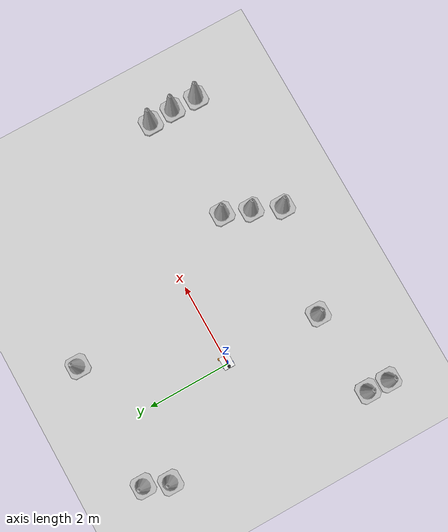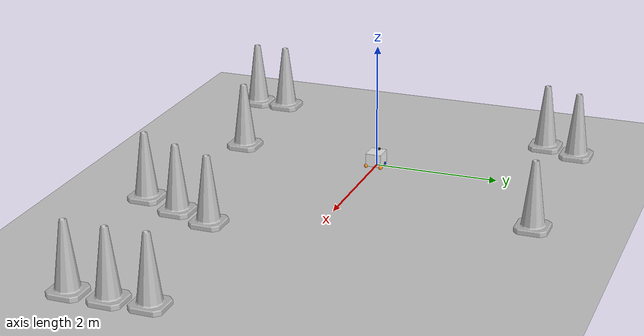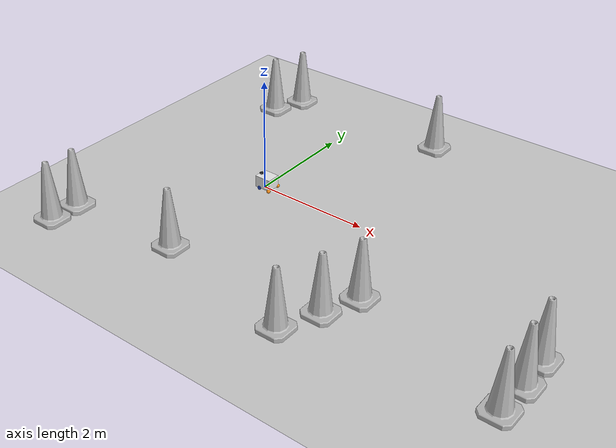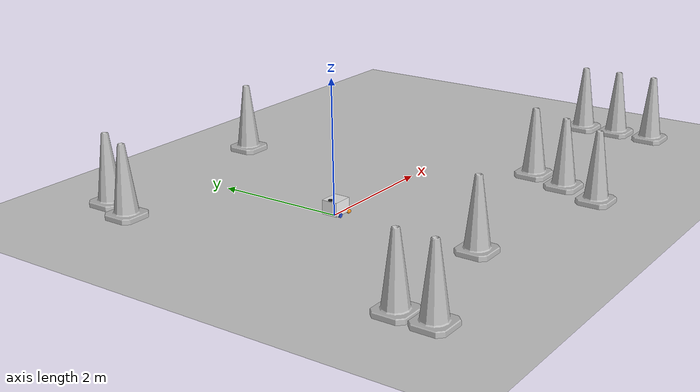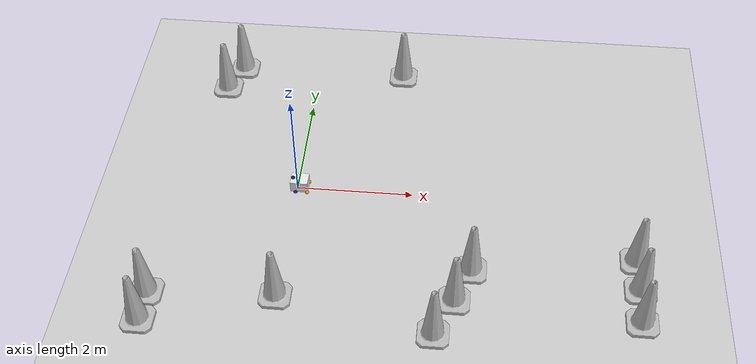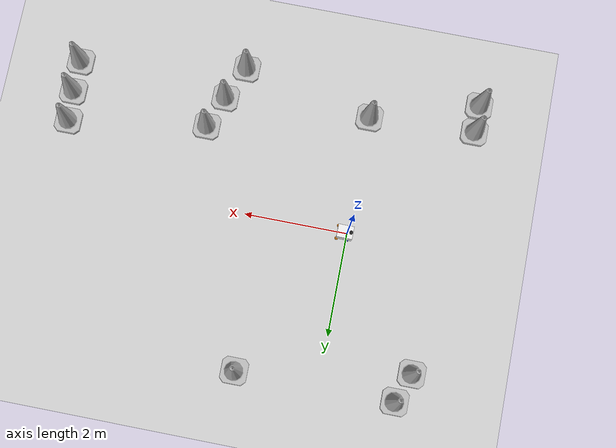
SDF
<sdf version="1.7">
 <world name="default">
  <light name="sun" type="directional">
   <pose>0 0 10 0 -0 0</pose>
   <diffuse>0.8 0.8 0.8 1</diffuse>
   <specular>0.2 0.2 0.2 1</specular>
   <attenuation>
    <range>1000</range>
    <constant>0.9</constant>
    <linear>0.01</linear>
    <quadratic>0.001</quadratic>
   </attenuation>
   <direction>-0.5 0.1 -0.9</direction>
   <spot><inner_angle>0</inner_angle><outer_angle>0</outer_angle><falloff>0</falloff></spot>
  </light>
  <model name="ground_plane">
   <static>1</static>
   <link name="link">
    <collision name="collision">
     <geometry><plane><normal>0 0 1</normal><size>100 100</size></plane></geometry>
     <surface>
      <contact><collide_bitmask>65535</collide_bitmask></contact>
      <friction><ode><mu>100</mu><mu2>50</mu2></ode></friction>
     </surface>
    </collision>
    <visual name="visual">
     <cast_shadows>0</cast_shadows>
     <geometry><plane><normal>0 0 1</normal><size>100 100</size></plane></geometry>
     <material>
      <script><uri>file://media/materials/scripts/gazebo.material</uri><name>Gazebo/Grey</name></script>
     </material>
    </visual>
   </link>
  </model>
  <gravity>0 0 -9.8</gravity>
  <magnetic_field>6e-06 2.3e-05 -4.2e-05</magnetic_field>
  <atmosphere type="adiabatic"/>
  <physics type="ode">
   <max_step_size>0.001</max_step_size>
   <real_time_factor>1</real_time_factor>
   <real_time_update_rate>1000</real_time_update_rate>
  </physics>
  <scene><ambient>0.4 0.4 0.4 1</ambient><background>0.7 0.7 0.7 1</background><shadows>1</shadows></scene>
  <audio><device>default</device></audio>
  <spherical_coordinates>
   <surface_model>EARTH_WGS84</surface_model>
   <latitude_deg>0</latitude_deg>
   <longitude_deg>0</longitude_deg>
   <elevation>0</elevation>
   <heading_deg>0</heading_deg>
  </spherical_coordinates>
  <model name="my_bot">
   <link name="base_link">
    <inertial>
     <pose>0.072808 0 0.075308 0 -0 0</pose>
     <mass>1.3</mass>
     <inertia>
      <ixx>0.0131992</ixx>
      <ixy>0</ixy>
      <ixz>0.00362602</ixz>
      <iyy>0.0174601</iyy>
      <iyz>0</iyz>
      <izz>0.0209439</izz>
     </inertia>
    </inertial>
    <collision name="base_link_fixed_joint_lump__chassis_collision">
     <pose>0.06 0 0.1045 0 -0 0</pose>
     <geometry><box><size>0.3 0.25 0.209</size></box></geometry>
    </collision>
    <collision name="base_link_fixed_joint_lump__laser_frame_collision_1">
     <pose>-0.0535 0 0.209 0 -0 0</pose>
     <geometry><cylinder><length>0.04</length><radius>0.05</radius></cylinder></geometry>
    </collision>
    <collision name="base_link_fixed_joint_lump__left_caster_wheel_collision_2">
     <pose>0.2 0.123 0 0 -0 0</pose>
     <geometry><sphere><radius>0.0335</radius></sphere></geometry>
     <surface><friction><ode><mu>0.001</mu><mu2>0.001</mu2></ode></friction></surface>
    </collision>
    <collision name="base_link_fixed_joint_lump__right_caster_wheel_collision_3">
     <pose>0.2 -0.123 0 0 -0 0</pose>
     <geometry><sphere><radius>0.0335</radius></sphere></geometry>
     <surface><friction><ode><mu>0.001</mu><mu2>0.001</mu2></ode></friction></surface>
    </collision>
    <visual name="base_link_fixed_joint_lump__chassis_visual">
     <pose>0.06 0 0.1045 0 -0 0</pose>
     <geometry><box><size>0.3 0.25 0.209</size></box></geometry>
     <material>
      <script><name>Gazebo/White</name><uri>file://media/materials/scripts/gazebo.material</uri></script>
     </material>
    </visual>
    <visual name="base_link_fixed_joint_lump__laser_frame_visual_1">
     <pose>-0.0535 0 0.209 0 -0 0</pose>
     <geometry><cylinder><length>0.026</length><radius>0.036</radius></cylinder></geometry>
     <material>
      <script><name>Gazebo/Black</name><uri>file://media/materials/scripts/gazebo.material</uri></script>
     </material>
    </visual>
    <visual name="base_link_fixed_joint_lump__laser_frame_visual_2">
     <pose>-0.0535 0 0.159 0 -0 0</pose>
     <geometry><cylinder><length>0.1</length><radius>0.01</radius></cylinder></geometry>
     <material>
      <script><name>Gazebo/Black</name><uri>file://media/materials/scripts/gazebo.material</uri></script>
     </material>
    </visual>
    <visual name="base_link_fixed_joint_lump__left_caster_wheel_visual_3">
     <pose>0.2 0.123 0 0 -0 0</pose>
     <geometry><sphere><radius>0.0335</radius></sphere></geometry>
     <material>
      <script><name>Gazebo/Orange</name><uri>file://media/materials/scripts/gazebo.material</uri></script>
     </material>
    </visual>
    <visual name="base_link_fixed_joint_lump__right_caster_wheel_visual_4">
     <pose>0.2 -0.123 0 0 -0 0</pose>
     <geometry><sphere><radius>0.0335</radius></sphere></geometry>
     <material>
      <script><name>Gazebo/Orange</name><uri>file://media/materials/scripts/gazebo.material</uri></script>
     </material>
    </visual>
    <sensor name="laser" type="ray">
     <visualize>0</visualize>
     <update_rate>10</update_rate>
     <ray>
      <scan>
       <horizontal>
        <samples>360</samples>
        <min_angle>-3.14</min_angle>
        <max_angle>3.14</max_angle>
        <resolution>1</resolution>
       </horizontal>
       <vertical><samples>1</samples><min_angle>0</min_angle><max_angle>0</max_angle></vertical>
      </scan>
      <range><min>0.3</min><max>12</max></range>
     </ray>
     <plugin name="laser_controller" filename="libgazebo_ros_ray_sensor.so">
      <ros><argument>~/out:=scan</argument></ros>
      <output_type>sensor_msgs/LaserScan</output_type>
      <frame_name>laser_frame</frame_name>
     </plugin>
     <pose>-0.0535 0 0.209 0 -0 0</pose>
    </sensor>
   </link>
   <joint name="left_wheel_joint" type="revolute">
    <pose relative_to="base_link">0 0.125 0 1.5708 -0 0</pose>
    <parent>base_link</parent>
    <child>left_wheel</child>
    <axis>
     <xyz>0 0 -1</xyz>
     <limit><lower>-1e+16</lower><upper>1e+16</upper></limit>
     <dynamics><spring_reference>0</spring_reference><spring_stiffness>0</spring_stiffness></dynamics>
    </axis>
   </joint>
   <link name="left_wheel">
    <pose relative_to="left_wheel_joint">0 0 0 0 -0 0</pose>
    <inertial>
     <mass>0.1</mass>
     <inertia>
      <ixx>3.36896e-05</ixx>
      <ixy>0</ixy>
      <ixz>0</ixz>
      <iyy>3.36896e-05</iyy>
      <iyz>0</iyz>
      <izz>5.61125e-05</izz>
     </inertia>
    </inertial>
    <collision name="left_wheel_collision">
     <geometry><cylinder><length>0.026</length><radius>0.0335</radius></cylinder></geometry>
    </collision>
    <visual name="left_wheel_visual">
     <geometry><cylinder><length>0.026</length><radius>0.0335</radius></cylinder></geometry>
     <material>
      <script><name>Gazebo/Blue</name><uri>file://media/materials/scripts/gazebo.material</uri></script>
     </material>
    </visual>
   </link>
   <joint name="right_wheel_joint" type="revolute">
    <pose relative_to="base_link">0 -0.125 0 -1.5708 0 0</pose>
    <parent>base_link</parent>
    <child>right_wheel</child>
    <axis>
     <xyz>0 0 1</xyz>
     <limit><lower>-1e+16</lower><upper>1e+16</upper></limit>
     <dynamics><spring_reference>0</spring_reference><spring_stiffness>0</spring_stiffness></dynamics>
    </axis>
   </joint>
   <link name="right_wheel">
    <pose relative_to="right_wheel_joint">0 0 0 0 -0 0</pose>
    <inertial>
     <mass>0.1</mass>
     <inertia>
      <ixx>3.36896e-05</ixx>
      <ixy>0</ixy>
      <ixz>0</ixz>
      <iyy>3.36896e-05</iyy>
      <iyz>0</iyz>
      <izz>5.61125e-05</izz>
     </inertia>
    </inertial>
    <collision name="right_wheel_collision">
     <geometry><cylinder><length>0.026</length><radius>0.0335</radius></cylinder></geometry>
    </collision>
    <visual name="right_wheel_visual">
     <geometry><cylinder><length>0.026</length><radius>0.0335</radius></cylinder></geometry>
     <material>
      <script><name>Gazebo/Blue</name><uri>file://media/materials/scripts/gazebo.material</uri></script>
     </material>
    </visual>
   </link>
   <static>0</static>
   <plugin name="diff_drive" filename="libgazebo_ros_diff_drive.so">
    <left_joint>left_wheel_joint</left_joint>
    <right_joint>right_wheel_joint</right_joint>
    <wheel_separation>0.23</wheel_separation>
    <wheel_diameter>0.067</wheel_diameter>
    <max_wheel_torque>5</max_wheel_torque>
    <max_wheel_acceleration>0.5</max_wheel_acceleration>
    <odometry_frame>odom</odometry_frame>
    <robot_base_frame>base_link</robot_base_frame>
    <publish_odom>1</publish_odom>
    <publish_odom_tf>1</publish_odom_tf>
    <publish_wheel_tf>1</publish_wheel_tf>
   </plugin>
   <pose>-0.017759 0.005212 0.033501 -4e-06 2e-06 -0.012106</pose>
  </model>
  <model name="Construction Cone">
   <link name="link">
    <collision name="collision">
     <geometry>
      <mesh><scale>10 10 10</scale><uri>model://construction_cone/meshes/construction_cone.dae</uri></mesh>
     </geometry>
    </collision>
    <visual name="visual">
     <geometry>
      <mesh><scale>10 10 10</scale><uri>model://construction_cone/meshes/construction_cone.dae</uri></mesh>
     </geometry>
    </visual>
    <inertial>
     <inertia><ixx>1</ixx><ixy>0</ixy><ixz>0</ixz><iyy>1</iyy><iyz>0</iyz><izz>1</izz></inertia>
     <mass>1</mass>
    </inertial>
   </link>
   <pose>-1.44834 2.96256 -0 0 -1e-06 0</pose>
  </model>
  <model name="Construction Cone_clone">
   <link name="link">
    <collision name="collision">
     <geometry>
      <mesh><scale>10 10 10</scale><uri>model://construction_cone/meshes/construction_cone.dae</uri></mesh>
     </geometry>
    </collision>
    <visual name="visual">
     <geometry>
      <mesh><scale>10 10 10</scale><uri>model://construction_cone/meshes/construction_cone.dae</uri></mesh>
     </geometry>
    </visual>
    <inertial>
     <inertia><ixx>1</ixx><ixy>0</ixy><ixz>0</ixz><iyy>1</iyy><iyz>0</iyz><izz>1</izz></inertia>
     <mass>1</mass>
    </inertial>
   </link>
   <pose>-1.6739 2.39437 -0 0 -1e-06 0</pose>
  </model>
  <model name="Construction Cone_clone_0">
   <link name="link">
    <collision name="collision">
     <geometry>
      <mesh><scale>10 10 10</scale><uri>model://construction_cone/meshes/construction_cone.dae</uri></mesh>
     </geometry>
    </collision>
    <visual name="visual">
     <geometry>
      <mesh><scale>10 10 10</scale><uri>model://construction_cone/meshes/construction_cone.dae</uri></mesh>
     </geometry>
    </visual>
    <inertial>
     <inertia><ixx>1</ixx><ixy>0</ixy><ixz>0</ixz><iyy>1</iyy><iyz>0</iyz><izz>1</izz></inertia>
     <mass>1</mass>
    </inertial>
   </link>
   <pose>-2.07917 -2.98035 -0 0 -1e-06 0</pose>
  </model>
  <model name="Construction Cone_clone_1">
   <link name="link">
    <collision name="collision">
     <geometry>
      <mesh><scale>10 10 10</scale><uri>model://construction_cone/meshes/construction_cone.dae</uri></mesh>
     </geometry>
    </collision>
    <visual name="visual">
     <geometry>
      <mesh><scale>10 10 10</scale><uri>model://construction_cone/meshes/construction_cone.dae</uri></mesh>
     </geometry>
    </visual>
    <inertial>
     <inertia><ixx>1</ixx><ixy>0</ixy><ixz>0</ixz><iyy>1</iyy><iyz>0</iyz><izz>1</izz></inertia>
     <mass>1</mass>
    </inertial>
   </link>
   <pose>-2.06956 -2.44235 -0 0 -1e-06 0</pose>
  </model>
  <model name="Construction Cone_clone_2">
   <link name="link">
    <collision name="collision">
     <geometry>
      <mesh><scale>10 10 10</scale><uri>model://construction_cone/meshes/construction_cone.dae</uri></mesh>
     </geometry>
    </collision>
    <visual name="visual">
     <geometry>
      <mesh><scale>10 10 10</scale><uri>model://construction_cone/meshes/construction_cone.dae</uri></mesh>
     </geometry>
    </visual>
    <inertial>
     <inertia><ixx>1</ixx><ixy>0</ixy><ixz>0</ixz><iyy>1</iyy><iyz>0</iyz><izz>1</izz></inertia>
     <mass>1</mass>
    </inertial>
   </link>
   <pose>2.53018 -2.85856 -1e-05 -0 -0 -0</pose>
  </model>
  <model name="Construction Cone_clone_3">
   <link name="link">
    <collision name="collision">
     <geometry>
      <mesh><scale>10 10 10</scale><uri>model://construction_cone/meshes/construction_cone.dae</uri></mesh>
     </geometry>
    </collision>
    <visual name="visual">
     <geometry>
      <mesh><scale>10 10 10</scale><uri>model://construction_cone/meshes/construction_cone.dae</uri></mesh>
     </geometry>
    </visual>
    <inertial>
     <inertia><ixx>1</ixx><ixy>0</ixy><ixz>0</ixz><iyy>1</iyy><iyz>0</iyz><izz>1</izz></inertia>
     <mass>1</mass>
    </inertial>
   </link>
   <pose>2.82409 -2.19521 -5e-06 -4e-06 1e-06 0</pose>
  </model>
  <model name="Construction Cone_clone_4">
   <link name="link">
    <collision name="collision">
     <geometry>
      <mesh><scale>10 10 10</scale><uri>model://construction_cone/meshes/construction_cone.dae</uri></mesh>
     </geometry>
    </collision>
    <visual name="visual">
     <geometry>
      <mesh><scale>10 10 10</scale><uri>model://construction_cone/meshes/construction_cone.dae</uri></mesh>
     </geometry>
    </visual>
    <inertial>
     <inertia><ixx>1</ixx><ixy>0</ixy><ixz>0</ixz><iyy>1</iyy><iyz>0</iyz><izz>1</izz></inertia>
     <mass>1</mass>
    </inertial>
   </link>
   <pose>3.06665 -1.56563 -0 0 -0 0</pose>
  </model>
  <model name="Construction Cone_clone_5">
   <link name="link">
    <collision name="collision">
     <geometry>
      <mesh><scale>10 10 10</scale><uri>model://construction_cone/meshes/construction_cone.dae</uri></mesh>
     </geometry>
    </collision>
    <visual name="visual">
     <geometry>
      <mesh><scale>10 10 10</scale><uri>model://construction_cone/meshes/construction_cone.dae</uri></mesh>
     </geometry>
    </visual>
    <inertial>
     <inertia><ixx>1</ixx><ixy>0</ixy><ixz>0</ixz><iyy>1</iyy><iyz>0</iyz><izz>1</izz></inertia>
     <mass>1</mass>
    </inertial>
   </link>
   <pose>1.60292 2.97796 -0 0 -1e-06 0</pose>
  </model>
  <model name="Construction Cone_clone_6">
   <link name="link">
    <collision name="collision">
     <geometry>
      <mesh><scale>10 10 10</scale><uri>model://construction_cone/meshes/construction_cone.dae</uri></mesh>
     </geometry>
    </collision>
    <visual name="visual">
     <geometry>
      <mesh><scale>10 10 10</scale><uri>model://construction_cone/meshes/construction_cone.dae</uri></mesh>
     </geometry>
    </visual>
    <inertial>
     <inertia><ixx>1</ixx><ixy>0</ixy><ixz>0</ixz><iyy>1</iyy><iyz>0</iyz><izz>1</izz></inertia>
     <mass>1</mass>
    </inertial>
   </link>
   <pose>-0.016093 -2.33854 0 -0 -0 -0</pose>
  </model>
  <model name="Construction Cone_clone_7">
   <link name="link">
    <collision name="collision">
     <geometry>
      <mesh><scale>10 10 10</scale><uri>model://construction_cone/meshes/construction_cone.dae</uri></mesh>
     </geometry>
    </collision>
    <visual name="visual">
     <geometry>
      <mesh><scale>10 10 10</scale><uri>model://construction_cone/meshes/construction_cone.dae</uri></mesh>
     </geometry>
    </visual>
    <inertial>
     <inertia><ixx>1</ixx><ixy>0</ixy><ixz>0</ixz><iyy>1</iyy><iyz>0</iyz><izz>1</izz></inertia>
     <mass>1</mass>
    </inertial>
   </link>
   <pose>5.76747 -2.37309 -0 0 -0 0</pose>
  </model>
  <model name="Construction Cone_clone_8">
   <link name="link">
    <collision name="collision">
     <geometry>
      <mesh><scale>10 10 10</scale><uri>model://construction_cone/meshes/construction_cone.dae</uri></mesh>
     </geometry>
    </collision>
    <visual name="visual">
     <geometry>
      <mesh><scale>10 10 10</scale><uri>model://construction_cone/meshes/construction_cone.dae</uri></mesh>
     </geometry>
    </visual>
    <inertial>
     <inertia><ixx>1</ixx><ixy>0</ixy><ixz>0</ixz><iyy>1</iyy><iyz>0</iyz><izz>1</izz></inertia>
     <mass>1</mass>
    </inertial>
   </link>
   <pose>5.77768 -1.75236 -8e-06 -6e-06 -0 -0</pose>
  </model>
  <model name="Construction Cone_clone_9">
   <link name="link">
    <collision name="collision">
     <geometry>
      <mesh><scale>10 10 10</scale><uri>model://construction_cone/meshes/construction_cone.dae</uri></mesh>
     </geometry>
    </collision>
    <visual name="visual">
     <geometry>
      <mesh><scale>10 10 10</scale><uri>model://construction_cone/meshes/construction_cone.dae</uri></mesh>
     </geometry>
    </visual>
    <inertial>
     <inertia><ixx>1</ixx><ixy>0</ixy><ixz>0</ixz><iyy>1</iyy><iyz>0</iyz><izz>1</izz></inertia>
     <mass>1</mass>
    </inertial>
   </link>
   <pose>5.74228 -1.15833 -0 0 -0 0</pose>
  </model>
 </world>
</sdf>
